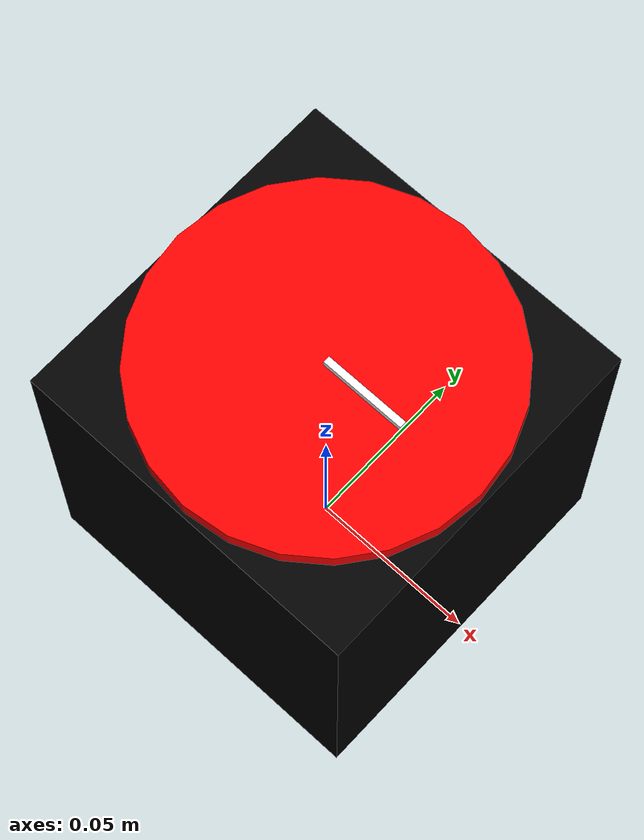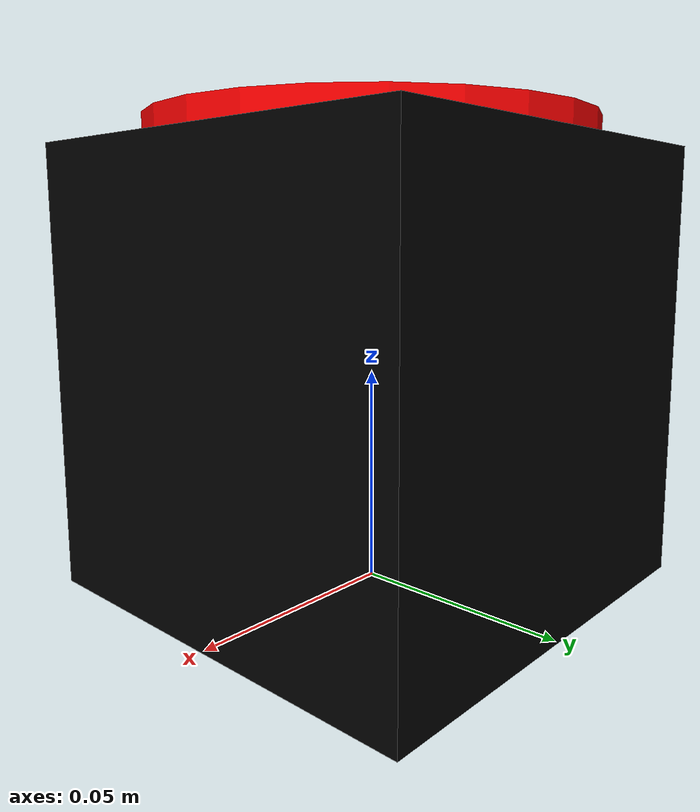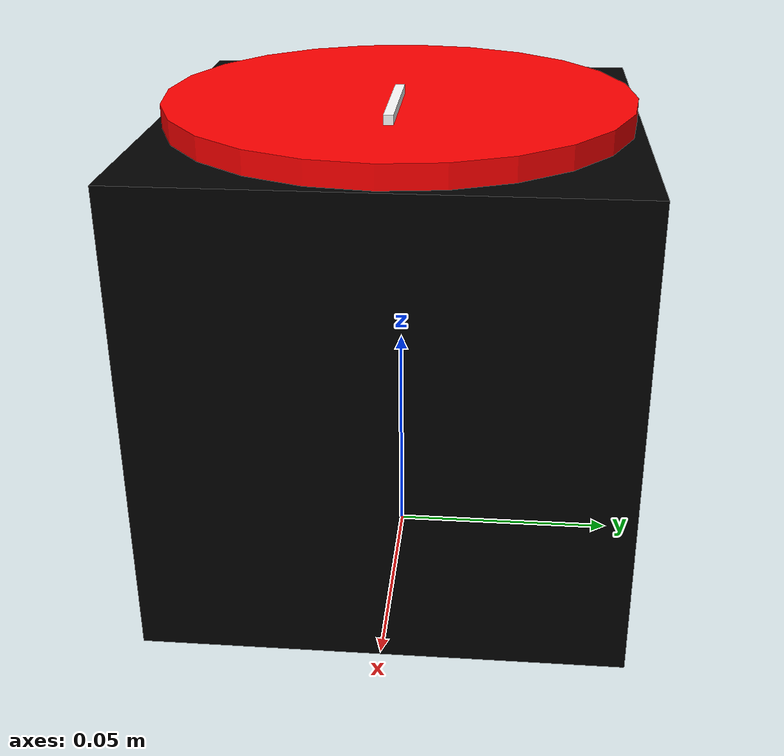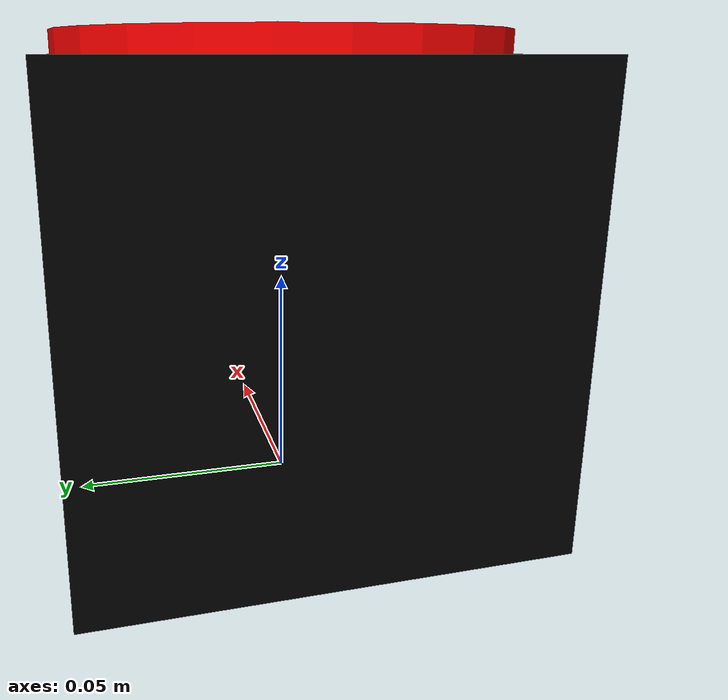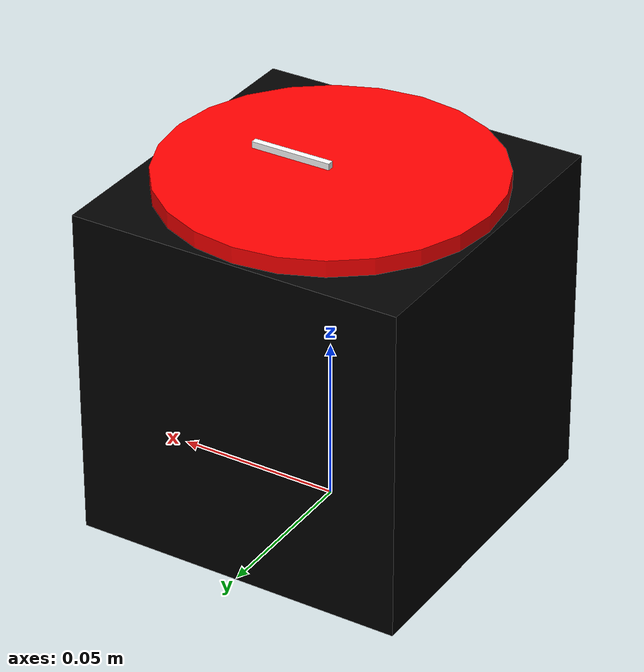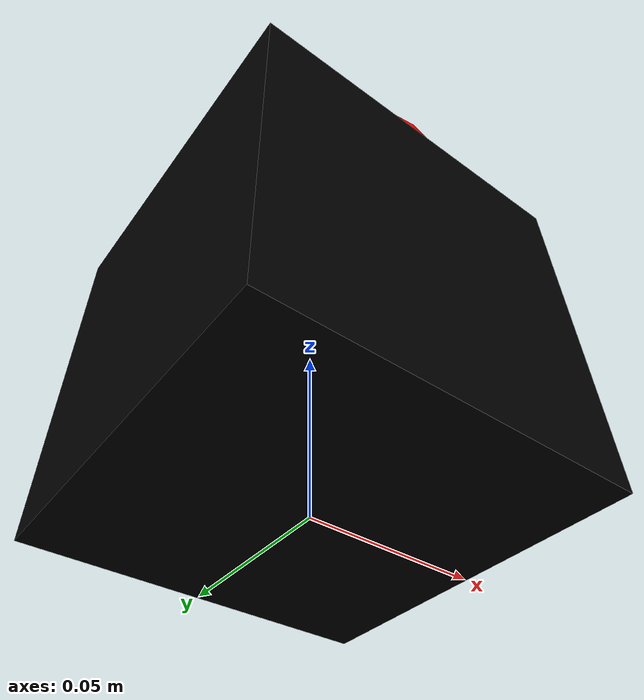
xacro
<?xml version="1.0"?>
<robot name="qube_description" xmlns:xacro="http://www.ros.org/wiki/xacro">

    <xacro:arg name="baud_rate" default="115200"/>
    <xacro:arg name="device" default="/dev/ttyACM0"/>
    <xacro:arg name="simulation" default="True"/>

    <xacro:include filename="$(find qube_description)/urdf/qube.macro.xacro"/>
    <xacro:include filename="$(find qube_driver)/ros2_control/qube_driver.ros2_control.xacro"/>

    <link name="world"/>

    <xacro:qube_description prefix=""/>

    <joint name="world_base_joint" type="fixed">
        <parent link="world"/>
        <child link="base_link"/>
        <origin xyz="0 0 0" rpy="0 0 0"/>
    </joint>

    <!-- Kall på qube_driver_ros2_control med riktige argumenter -->
    <xacro:qube_driver_ros2_control
        name="qube_driver"
        prefix=""
        baud_rate="$(arg baud_rate)"
        device="$(arg device)"
        simulation="$(arg simulation)"/>

</robot>

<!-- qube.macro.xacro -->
<robot xmlns:xacro="http://ros.org/wiki/xacro">

    <!-- Define properties for dimensions -->
    <xacro:property name="box_size" value="0.102" />
    <xacro:property name="cylinder_radius" value="0.05" />
    <xacro:property name="cylinder_height" value="0.01" />
    <xacro:property name="angle_box_size" value="0.025 0.002 0.002" />

    <xacro:macro name="qube_description" params="prefix">

        <!-- Base link -->
        <link name="${prefix}base_link"/>

        <!-- Stator link -->
        <link name="${prefix}stator_link">
            <visual>
                <geometry>
                    <box size="${box_size} ${box_size} ${box_size}"/>
                </geometry>
                <material name="black">
                    <color rgba="0 0 0 1"/>
                </material>
            </visual>
        </link>

        <!-- Rotor link -->
        <link name="${prefix}rotor_link">
            <visual>
                <geometry>
                    <cylinder radius="${cylinder_radius}" length="${cylinder_height}"/>
                </geometry>
                <material name="red">
                    <color rgba="1 0 0 1"/>
                </material>
            </visual>
        </link>

        <!-- Angle link -->
        <link name="${prefix}angle_link">
            <visual>
                <geometry>
                    <box size="${angle_box_size}"/>
                </geometry>
                <material name="white">
                    <color rgba="1 1 1 1"/>
                </material>
            </visual>
        </link>

        <!-- Joints -->
        <joint name="${prefix}stator_joint" type="fixed">
            <parent link="${prefix}base_link"/>
            <child link="${prefix}stator_link"/>
            <origin xyz="0 0 ${box_size/2}" rpy="0 0 0"/>
        </joint>

        <joint name="${prefix}motor_joint" type="revolute">
            <parent link="${prefix}stator_link"/>
            <child link="${prefix}rotor_link"/>
            <origin xyz="0 0 ${box_size/2}" rpy="0 0 0"/>
            <axis xyz="0 0 1"/>
            <limit effort="1.0" lower="-3.14" upper="3.14" velocity="1.0"/>
        </joint>

        <joint name="${prefix}indicator" type="fixed">
            <parent link="${prefix}rotor_link"/>
            <child link="${prefix}angle_link"/>
            <origin xyz="0.0125 0 0.006" rpy="0 0 0"/>
        </joint>

    </xacro:macro>
</robot>
